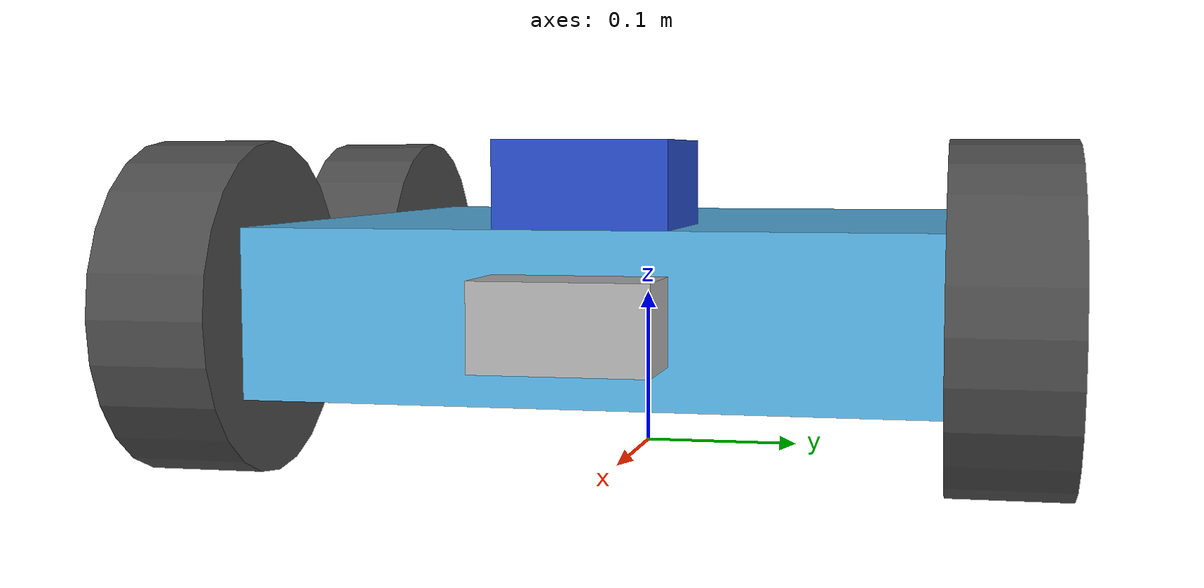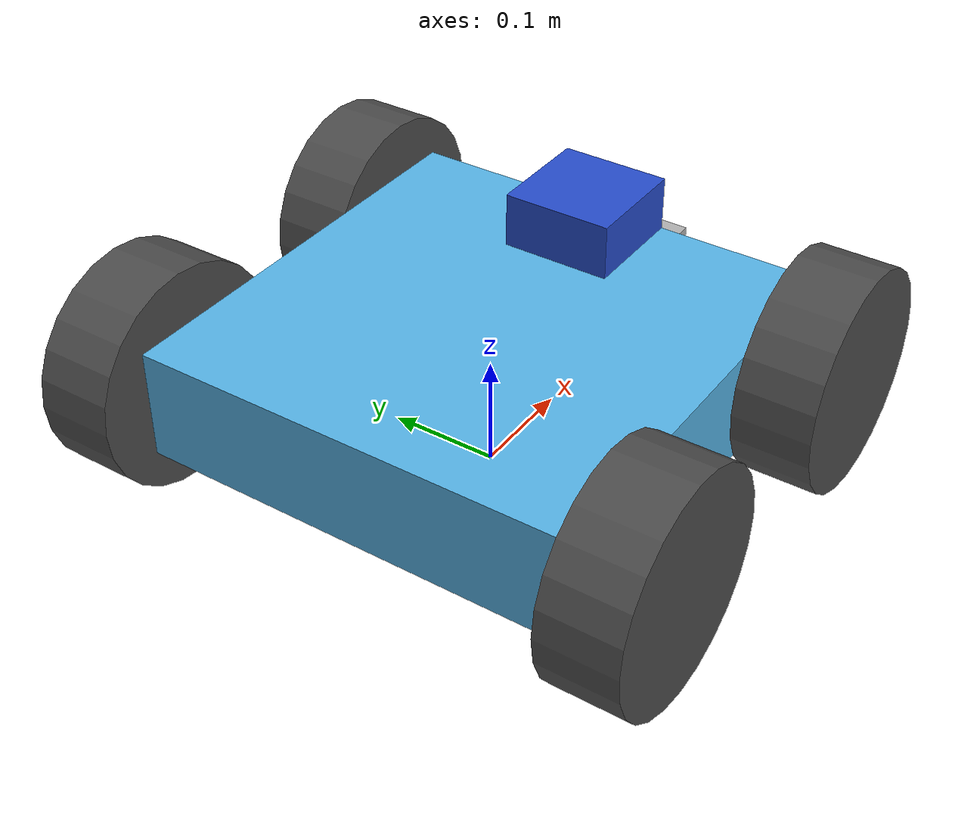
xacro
<?xml version="1.0" ?>
<robot name="fourWD_catbot" xmlns:xacro="http://ros.org/wiki/xacro">
    <xacro:include filename="$(find catbot_description)/urdf/include/wheel.urdf.xacro" />
    <xacro:include filename="$(find catbot_description)/urdf/include/laser_scanner.urdf.xacro" />
    <xacro:include filename="$(find catbot_description)/urdf/include/camera.urdf.xacro" />
    <xacro:include filename="$(find catbot_description)/urdf/include/imu.urdf.xacro" />

    <property name="base_width"  value = "0.40"/>
    <property name="base_length" value = "0.40"/>
    <property name="base_height" value = "0.10"/>
    <property name="base_mass"   value = "2"/>

    <link name="base_footprint">
        <inertial>
            <mass value="0.0001" />
            <origin xyz="0 0 0" />
            <inertia
                ixx="0.0000001"
                ixy="0.0"
                ixz="0.0"
                iyy="0.0000001"
                iyz="0.0"
                izz="0.0000001" />
        </inertial>
    </link>

    <gazebo reference="base_footprint">
        <turnGravityOff>false</turnGravityOff>
    </gazebo>

    <joint name="base_footprint_joint" type="fixed">
        <origin xyz="0 0 ${wheel_radius - base_z_origin_to_wheel_origin}" rpy="0 0 0" />
        <parent link="base_footprint"/>
        <child  link="base_link" />
    </joint>

    <link name="base_link">
        <inertial>
            <origin xyz="0 0 0" rpy="0 0 0" />
            <mass value = "${base_mass}" />
            <inertia
            ixx = "${base_mass*(base_width*base_width+base_height*base_height)/12}"
            ixy = "0"
            ixz = "0"
            iyy = "${base_mass*(base_length*base_length+base_height*base_height)/12}"
            iyz = "0"
            izz = "${base_mass*(base_width*base_width+base_length*base_length)/12}"/>
        </inertial>
        <visual>
            <origin xyz="0 0 0" rpy="0 0 0" />
            <geometry>
                <box size = "${base_length} ${base_width} ${base_height} " />
            </geometry>
        </visual>
        <collision>
            <origin xyz="0 0 0" rpy="0 0 0" />
            <geometry>
                <box size = "${base_length} ${base_width} ${base_height} " />
            </geometry>
        </collision>
    </link>

    <wheel fb="front" lr="right" parent="base_link" translateX="${(base_length-wheel_radius)/2}"  translateY="${(base_width + wheel_height)/2}"  flipY="1"/>
    <wheel fb="front" lr="left"  parent="base_link" translateX="${(base_length-wheel_radius)/2}"  translateY="-${(base_width + wheel_height)/2}" flipY="1"/>
    <wheel fb="back"  lr="right" parent="base_link" translateX="-${(base_length-wheel_radius)/2}" translateY="${(base_width + wheel_height)/2}"  flipY="1"/>
    <wheel fb="back"  lr="left"  parent="base_link" translateX="-${(base_length-wheel_radius)/2}" translateY="-${(base_width + wheel_height)/2}" flipY="1"/>

    <laser_scanner_link parent="base_link" x="${(base_length-2*laser_scanner_size)/2}" y = "0" z="${(laser_scanner_size+base_height)/2}" r = "0" p ="0" yaw = "0"/>
    <camera_link parent="base_link" x="${(base_length+0.05)/2}" y = "0" z="0" r = "0" p ="0" yaw = "0"/>
    <imu_link parent="base_link" />

    <gazebo>
        <plugin name="gazebo_ros_control" filename="libgazebo_ros_control.so">
          <robotNamespace>/catbot</robotNamespace>
        </plugin>
    </gazebo>
</robot>

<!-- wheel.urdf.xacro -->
<robot name="wheel" xmlns:xacro="http://www.ros.org/wiki/xacro">

  <property name="M_PI" value="3.1415926535897931" />
  <property name="M_PI_2" value="1.570796327" />
  <property name="DEG_TO_RAD" value="0.017453293" />

  <!-- Wheels -->
  <property name="wheel_radius" value="0.10" />
  <property name="wheel_height" value="0.07" />
  <property name="wheel_mass" value="0.150" /> <!-- in kg-->

  <property name="base_x_origin_to_wheel_origin" value="0.25" />
  <property name="base_y_origin_to_wheel_origin" value="0.3" />
  <property name="base_z_origin_to_wheel_origin" value="0.0" />

  <macro name="cylinder_inertia" params="m r h">
    <inertia  ixx="${m*(3*r*r+h*h)/12}" ixy = "0" ixz = "0"
              iyy="${m*(3*r*r+h*h)/12}" iyz = "0"
              izz="${m*r*r/2}" />
  </macro>

  <xacro:macro name="wheel" params="fb lr parent translateX translateY flipY"> <!--fb : front, back ; lr: left, right -->
    <link name="${fb}_${lr}_wheel">
      <visual>
        <origin xyz="0 0 0" rpy="${flipY*M_PI/2} 0  0 " />
        <geometry>
          <cylinder length="${wheel_height}" radius="${wheel_radius}" />
        </geometry>
        <material name="DarkGray" />
      </visual>
      <collision>
        <origin xyz="0 0 0" rpy="${flipY*M_PI/2} 0 0 " />
        <geometry>
          <cylinder length="${wheel_height}" radius="${wheel_radius}" />
        </geometry>
      </collision>
      <inertial>
        <mass value="${wheel_mass}" />
        <origin xyz="0 0 0" />
        <cylinder_inertia  m="${wheel_mass}" r="${wheel_radius}" h="${wheel_height}" />
      </inertial>
    </link>

    <gazebo reference="${fb}_${lr}_wheel">
        <kp value="100000.0"/>
        <kd value="100"/>
        <minDepth value="0.005"/>
        <mu1 value="100"/>
        <mu2 value="100"/>
        <fdir1 value="1 0 0"/>
        <material>Gazebo/Black</material>
        <turnGravityOff>false</turnGravityOff>
        <dampingFactor>0.01</dampingFactor>
    </gazebo>

    <joint name="${fb}_${lr}_wheel_joint" type="continuous">
      <parent link="${parent}"/>
      <child link="${fb}_${lr}_wheel"/>
      <origin xyz="${translateX} ${translateY} ${base_z_origin_to_wheel_origin}" rpy="0 0 0" />
      <axis xyz="0 1 0" rpy="0  0" />
      <limit effort="100" velocity="100"/>
    </joint>

    <!-- Transmission is important to link the joints and the controller -->
    <transmission name="${fb}_${lr}_wheel_joint_trans">
      <type>transmission_interface/SimpleTransmission</type>
      <joint name="${fb}_${lr}_wheel_joint">
           <hardwareInterface>VelocityJointInterface</hardwareInterface>
      </joint>
      <actuator name="${fb}_${lr}_wheel_joint_motor">
        <hardwareInterface>VelocityJointInterface</hardwareInterface>
        <mechanicalReduction>1</mechanicalReduction>
        <motorTorqueConstant>1</motorTorqueConstant>
      </actuator>
    </transmission>

  </xacro:macro>
</robot>

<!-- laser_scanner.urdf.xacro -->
<robot name = "laser" xmlns:xacro="http://www.ros.org/wiki/xacro">

    <property name="laser_scanner_size" value="0.05" />
    <xacro:macro name="laser_scanner_link" params="parent x y z r p yaw">
        <link name="laser_scanner">
            <visual>
                <origin xyz = "0 0 0" rpy="0 0 0" />
                <geometry>
                    <box size= "${2*laser_scanner_size} ${2*laser_scanner_size} ${laser_scanner_size}" />
                </geometry>
            </visual>
            <collision>
                <origin xyz = "0 0 0" rpy="0 0 0" />
                <geometry>
                    <box size= "${laser_scanner_size} ${laser_scanner_size} ${laser_scanner_size}" />
                </geometry>
            </collision>
            <inertial>
                <mass value="0.02" />
                <inertia
                    ixx="0.0001"
                    ixy="0"
                    ixz="0"
                    iyy="0.0001"
                    iyz="0"
                    izz="0.0001"/>
            </inertial>
        </link>
        <joint name="laser_joint" type="fixed">
            <parent link="${parent}"/>
            <child link="laser_scanner" />
            <origin xyz = "${x} ${y} ${z}" rpy="${r} ${p} ${yaw}" />
        </joint>
        <gazebo reference="laser_scanner">
            <sensor type="ray" name="head_hokuyo_sensor">
              <pose>0 0 0 0 0 0</pose>
              <visualize>true</visualize>
              <update_rate>40</update_rate>
              <ray>
                <scan>
                  <horizontal>
                    <samples>540</samples>
                    <resolution>1</resolution>
                    <min_angle>-1.270796</min_angle>
                    <max_angle>1.270796</max_angle>
                  </horizontal>
                </scan>
                <range>
                  <min>0.12</min>
                  <max>30.0</max>
                  <resolution>0.01</resolution>
                </range>
                <noise>
                  <type>gaussian</type>
                  <mean>0.0</mean>
                  <stddev>0.01</stddev>
                </noise>
              </ray>
              <plugin name="gazebo_ros_head_hokuyo_controller" filename="libgazebo_ros_laser.so">
                <topicName>catbot/scan</topicName>
                <frameName>laser_scanner</frameName>
              </plugin>
            </sensor>
        </gazebo>
        <gazebo reference="laser_scanner">
            <material> Gazebo/Blue </material>
        </gazebo>
    </xacro:macro>
</robot>

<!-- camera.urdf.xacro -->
<robot name="camera_model" xmlns:xacro="http://ros.org/wiki/xacro">
<xacro:macro name="camera_link" params="parent x y z r p yaw">
    <link name="camera">
        <visual>
            <origin xyz="0 0 0" rpy="0 0 0"/>
            <geometry>
                <box size="0.05 0.10 0.05" />
            </geometry>
        </visual>
        <inertial>
            <mass value="0.02" />
            <inertia
                ixx="0.0001"
                ixy="0"
                ixz="0"
                iyy="0.0001"
                iyz="0"
                izz="0.0001"/>
        </inertial>
        <collision>
            <origin xyz="0 0 0" rpy="0 0 0"/>
            <geometry>
                <box size="0.05 0.10 0.05" />
            </geometry>
        </collision>
    </link>
    <joint name="camera_joint" type="fixed">
        <parent link= "${parent}" />
        <child link="camera" />
        <origin xyz = "${x} ${y} ${z}" rpy="${r} ${p} ${yaw}" />
    </joint>
    <gazebo reference="camera">
        <sensor type="camera" name="front_camera">
          <update_rate>30.0</update_rate>
          <camera name="front_camera">
            <horizontal_fov>1.3962634</horizontal_fov>
            <image>
              <width>800</width>
              <height>600</height>
              <format>R8G8B8</format>
            </image>
            <clip>
              <near>0.02</near>
              <far>300</far>
            </clip>
            <noise>
              <type>gaussian</type>
              <mean>0.0</mean>
              <stddev>0.007</stddev>
            </noise>
          </camera>
          <plugin name="camera_controller" filename="libgazebo_ros_camera.so">
            <alwaysOn>true</alwaysOn>
            <updateRate>30.0</updateRate>
            <cameraName>catbot/front_camera</cameraName>
            <imageTopicName>image_raw</imageTopicName>
            <cameraInfoTopicName>camera_info</cameraInfoTopicName>
            <frameName>camera</frameName>
            <hackBaseline>0.07</hackBaseline>
            <distortionK1>0.0</distortionK1>
            <distortionK2>0.0</distortionK2>
            <distortionK3>0.0</distortionK3>
            <distortionT1>0.0</distortionT1>
            <distortionT2>0.0</distortionT2>
          </plugin>
        </sensor>
    </gazebo>
</xacro:macro>
</robot>

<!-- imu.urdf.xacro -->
<robot name="imu_model" xmlns:xacro="http://ros.org/wiki/xacro">
<xacro:macro name="imu_link" params="parent">
    <link name="imu">
        <inertial>
            <mass value="0.003" />
            <inertia
                ixx="0.00001"
                ixy="0"
                ixz="0"
                iyy="0.00001"
                iyz="0"
                izz="0.00001"/>
        </inertial>
    </link>
    <joint name="imu_joint" type="fixed">
        <parent link="${parent}"/>
        <child  link="imu"/>
        <origin xyz="0 0 0" rpy="0 0 0"/>
    </joint>
    <gazebo>
        <plugin name="imu_controller" filename="libgazebo_ros_imu.so">
            <alwaysOn>true</alwaysOn>
            <updateRate>50.0</updateRate>
            <bodyName>imu</bodyName>
            <topicName>imu_data</topicName>
            <gaussianNoise>2.89e-08</gaussianNoise>
            <xyzOffsets>0 0 0</xyzOffsets>
            <rpyOffsets>0 0 0</rpyOffsets>
        </plugin>
    </gazebo>
</xacro:macro>
</robot>
